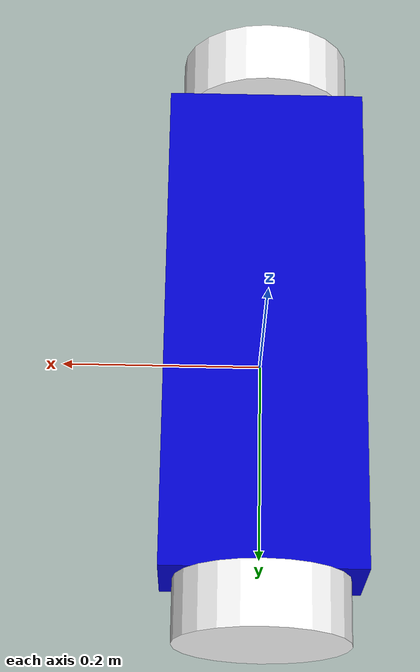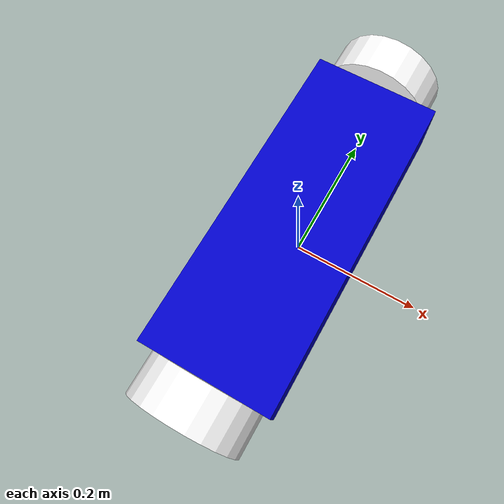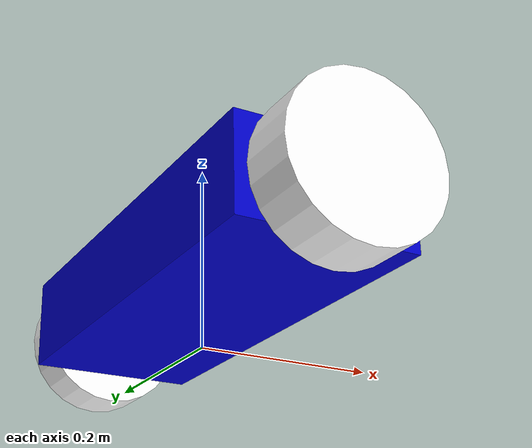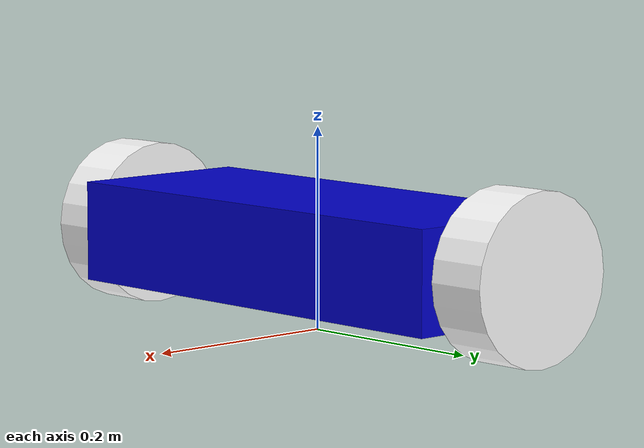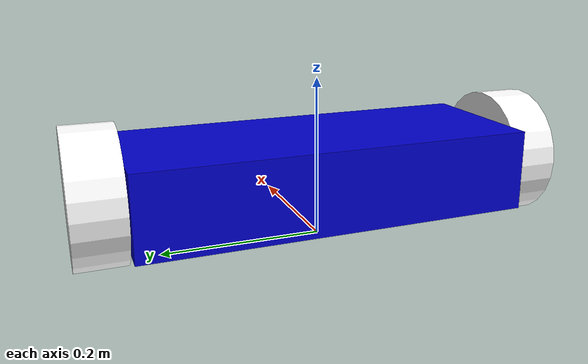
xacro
<robot name="hoverpibot" xmlns:xacro="http://ros.org/wiki/xacro">

  <xacro:property name="robotwidth" value="0.60" />
  <xacro:property name="bodywidth" value="0.48" />
  <xacro:property name="bodylen" value="0.19" />
  <xacro:property name="bodyheight" value="0.10" />
  <xacro:property name="wheeldiam" value="0.1651" />
  <xacro:property name="wheelwidth" value="0.06" />
  <xacro:property name="lidarpos" value="0.18" />
  <xacro:property name="pi" value="3.1415" />

  <material name="blue">
    <color rgba="0 0 0.8 1"/>
  </material>

  <material name="black">
    <color rgba="0 0 0 1"/>
  </material>

  <material name="white">
    <color rgba="1 1 1 1"/>
  </material>

  <xacro:macro name="default_inertial" params="mass">
    <inertial>
      <mass value="${mass}" />
      <inertia ixx="1.0" ixy="0.0" ixz="0.0" iyy="1.0" iyz="0.0" izz="1.0" />
    </inertial>
  </xacro:macro>

  <link name="base_link">
    <visual>
      <origin xyz="0 0 ${wheeldiam/2}" rpy="0 0 0" />
      <geometry>
        <box size="${bodylen} ${bodywidth} ${bodyheight}"/>
      </geometry>
      <material name="blue"/>
    </visual>
    <collision>
      <geometry>
        <box size="${bodylen} ${bodywidth} ${bodyheight}"/>
      </geometry>
    </collision>
  </link>

  <link name="left_wheel">
    <visual>
      <origin xyz="0 -${bodywidth/2 + wheelwidth/2} 0" rpy="${pi/2} 0 0" />
      <geometry>
        <cylinder radius="${wheeldiam/2}" length="${wheelwidth}"/>
      </geometry>
      <material name="white"/>
    </visual>
    <collision>
      <geometry>
        <cylinder radius="${wheeldiam/2}" length="${wheelwidth}"/>
      </geometry>
    </collision>
    <xacro:default_inertial mass="1"/>
  </link>

  <joint name="left_wheel" type="continuous">
    <axis xyz="0 1 0" />
    <parent link="base_link"/>
    <child link="left_wheel"/>
    <origin xyz="0 0 ${wheeldiam/2}" rpy="0 0 0"/>
  </joint>

  <link name="right_wheel">
    <visual>
      <origin xyz="0 ${bodywidth/2 + wheelwidth/2} 0" rpy="${pi/2} 0 0" />
      <geometry>
        <cylinder radius="${wheeldiam/2}" length="${wheelwidth}"/>
      </geometry>
      <material name="white"/>
    </visual>
    <collision>
      <geometry>
        <cylinder radius="${wheeldiam/2}" length="${wheelwidth}"/>
      </geometry>
    </collision>
    <xacro:default_inertial mass="1"/>
  </link>

  <joint name="right_wheel" type="continuous">
    <axis xyz="0 1 0" />
    <parent link="base_link"/>
    <child link="right_wheel"/>
    <origin xyz="0 0 ${wheeldiam/2}" rpy="0 0 0"/>
  </joint>

  <transmission name="left_wheel_trans">
    <type>transmission_interface/SimpleTransmission</type>
    <joint name="left_wheel_joint">
      <hardwareInterface>hardware_interface/EffortJointInterface</hardwareInterface>
    </joint>
    <actuator name="left_wheel_motor">
      <hardwareInterface>hardware_interface/EffortJointInterface</hardwareInterface>
      <mechanicalReduction>1</mechanicalReduction>
    </actuator>
  </transmission>
  <transmission name="right_wheel_trans">
    <type>transmission_interface/SimpleTransmission</type>
    <joint name="right_wheel_joint">
      <hardwareInterface>hardware_interface/EffortJointInterface</hardwareInterface>
    </joint>
    <actuator name="right_wheel_motor">
      <hardwareInterface>hardware_interface/EffortJointInterface</hardwareInterface>
      <mechanicalReduction>1</mechanicalReduction>
    </actuator>
  </transmission>

</robot>
